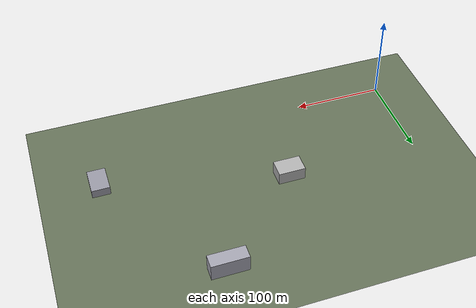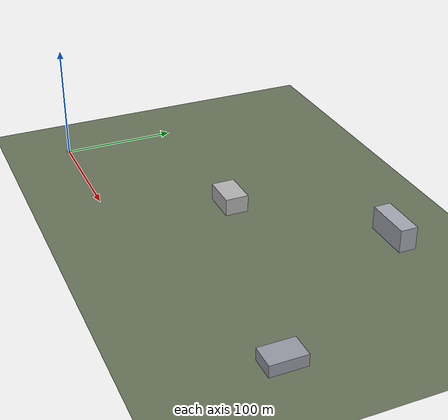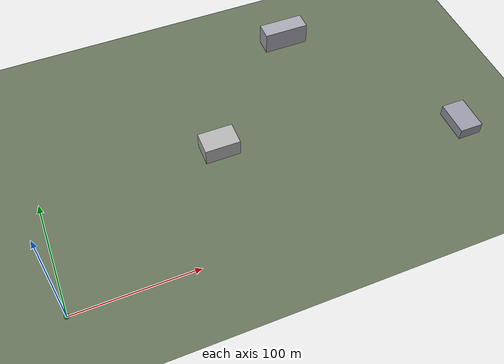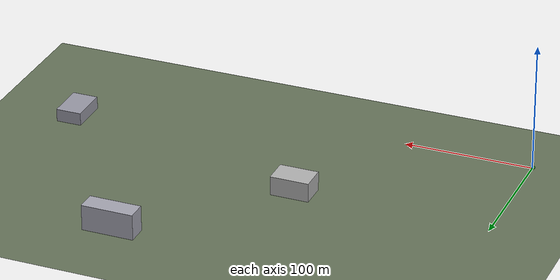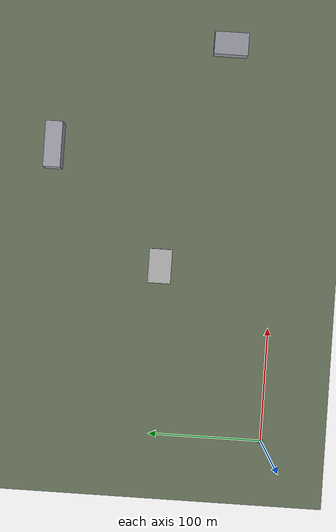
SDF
<?xml version="1.0" ?>
<sdf version="1.9">
  <world name="coastal_industrial_v1">

    <!-- Physics: 1ms step, real-time -->
    <physics name="1ms" type="ode">
      <max_step_size>0.001</max_step_size>
      <real_time_factor>1.0</real_time_factor>
    </physics>

    <!-- Required plugins -->
    <plugin filename="gz-sim-physics-system" name="gz::sim::systems::Physics"/>
    <plugin filename="gz-sim-user-commands-system" name="gz::sim::systems::UserCommands"/>
    <plugin filename="gz-sim-scene-broadcaster-system" name="gz::sim::systems::SceneBroadcaster"/>
    <plugin filename="gz-sim-sensors-system" name="gz::sim::systems::Sensors">
      <render_engine>ogre2</render_engine>
    </plugin>
    <plugin filename="gz-sim-imu-system" name="gz::sim::systems::Imu"/>
    <plugin filename="gz-sim-navsat-system" name="gz::sim::systems::NavSat"/>

    <!-- Spherical coordinates for GPS simulation -->
    <!-- Placed near Boulder, CO for testing convenience -->
    <spherical_coordinates>
      <surface_model>EARTH_WGS84</surface_model>
      <world_frame_orientation>ENU</world_frame_orientation>
      <latitude_deg>40.0150</latitude_deg>
      <longitude_deg>-105.2705</longitude_deg>
      <elevation>1655</elevation>
      <heading_deg>0</heading_deg>
    </spherical_coordinates>

    <!-- Lighting -->
    <light type="directional" name="sun">
      <cast_shadows>true</cast_shadows>
      <pose>0 0 100 0 0 0</pose>
      <diffuse>0.8 0.8 0.8 1</diffuse>
      <specular>0.2 0.2 0.2 1</specular>
      <direction>-0.5 0.1 -0.9</direction>
    </light>

    <!-- Ground plane (large enough for 500m x 500m operations area) -->
    <model name="ground_plane">
      <static>true</static>
      <link name="link">
        <collision name="collision">
          <geometry>
            <plane>
              <normal>0 0 1</normal>
              <size>1000 1000</size>
            </plane>
          </geometry>
        </collision>
        <visual name="visual">
          <geometry>
            <plane>
              <normal>0 0 1</normal>
              <size>1000 1000</size>
            </plane>
          </geometry>
          <material>
            <ambient>0.4 0.45 0.35 1</ambient>
            <diffuse>0.4 0.45 0.35 1</diffuse>
          </material>
        </visual>
      </link>
    </model>

    <!-- ── Buildings (LOS obstructions) ──────────────────────────────────── -->
    <!-- Matches mission_001.yaml world_features.buildings -->

    <!-- Building 1: center=[150, 100, 0], size=[30, 20, 15] -->
    <model name="bldg_1">
      <static>true</static>
      <pose>150 100 7.5 0 0 0</pose>
      <link name="link">
        <collision name="collision">
          <geometry>
            <box><size>30 20 15</size></box>
          </geometry>
        </collision>
        <visual name="visual">
          <geometry>
            <box><size>30 20 15</size></box>
          </geometry>
          <material>
            <ambient>0.6 0.6 0.6 1</ambient>
            <diffuse>0.7 0.7 0.7 1</diffuse>
          </material>
        </visual>
      </link>
    </model>

    <!-- Building 2: center=[250, 200, 0], size=[40, 15, 20] -->
    <model name="bldg_2">
      <static>true</static>
      <pose>250 200 10 0 0 0</pose>
      <link name="link">
        <collision name="collision">
          <geometry>
            <box><size>40 15 20</size></box>
          </geometry>
        </collision>
        <visual name="visual">
          <geometry>
            <box><size>40 15 20</size></box>
          </geometry>
          <material>
            <ambient>0.55 0.55 0.6 1</ambient>
            <diffuse>0.65 0.65 0.7 1</diffuse>
          </material>
        </visual>
      </link>
    </model>

    <!-- Building 3: center=[350, 50, 0], size=[20, 30, 10] -->
    <model name="bldg_3">
      <static>true</static>
      <pose>350 50 5 0 0 0</pose>
      <link name="link">
        <collision name="collision">
          <geometry>
            <box><size>20 30 10</size></box>
          </geometry>
        </collision>
        <visual name="visual">
          <geometry>
            <box><size>20 30 10</size></box>
          </geometry>
          <material>
            <ambient>0.5 0.5 0.55 1</ambient>
            <diffuse>0.6 0.6 0.65 1</diffuse>
          </material>
        </visual>
      </link>
    </model>

    <!-- ── Visual markers (non-physical) ─────────────────────────────────── -->

    <!-- Base station marker -->
    <model name="base_station">
      <static>true</static>
      <pose>0 0 0.5 0 0 0</pose>
      <link name="link">
        <visual name="visual">
          <geometry>
            <cylinder>
              <radius>2</radius>
              <length>1</length>
            </cylinder>
          </geometry>
          <material>
            <ambient>0.2 0.5 0.2 1</ambient>
            <diffuse>0.2 0.6 0.2 1</diffuse>
          </material>
        </visual>
      </link>
    </model>

  </world>
</sdf>
